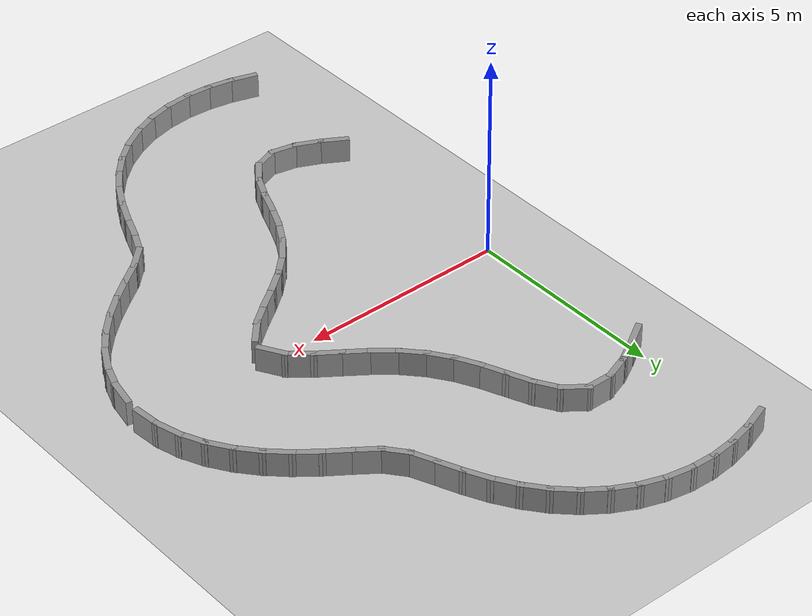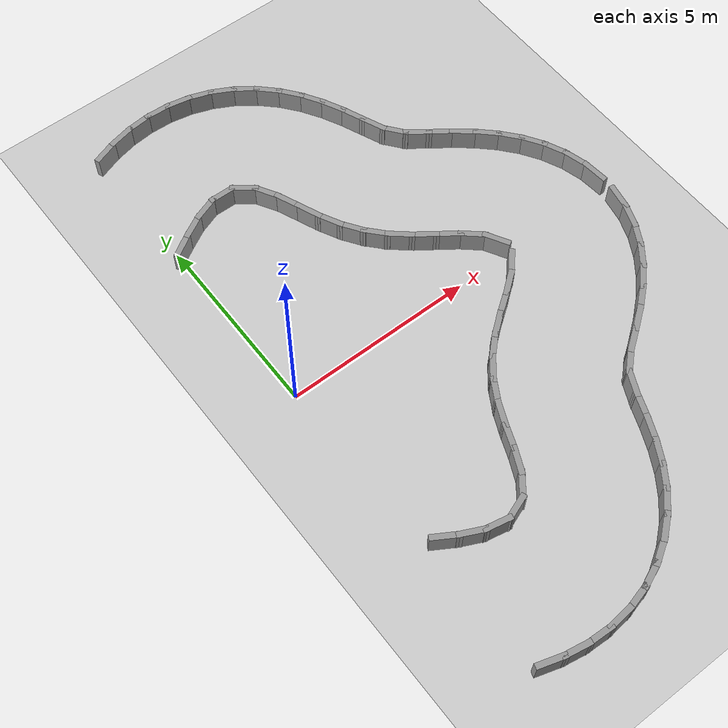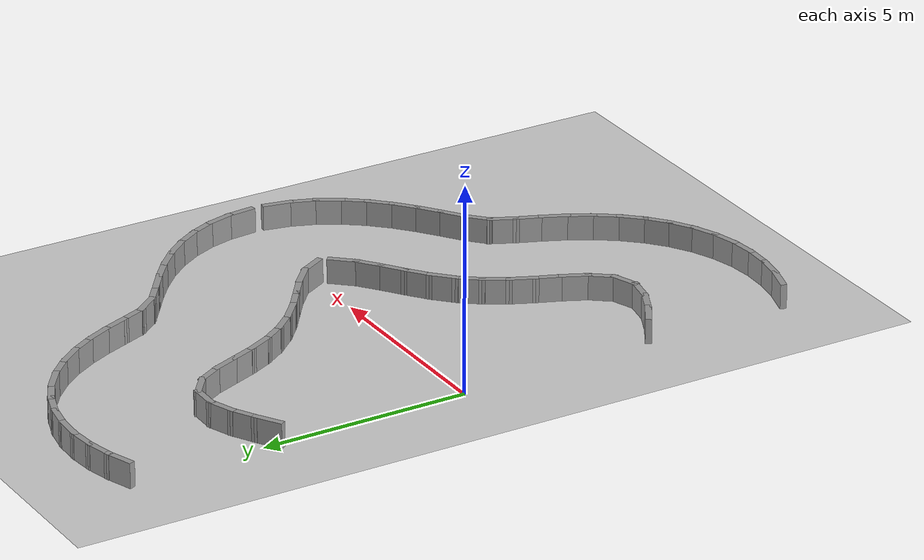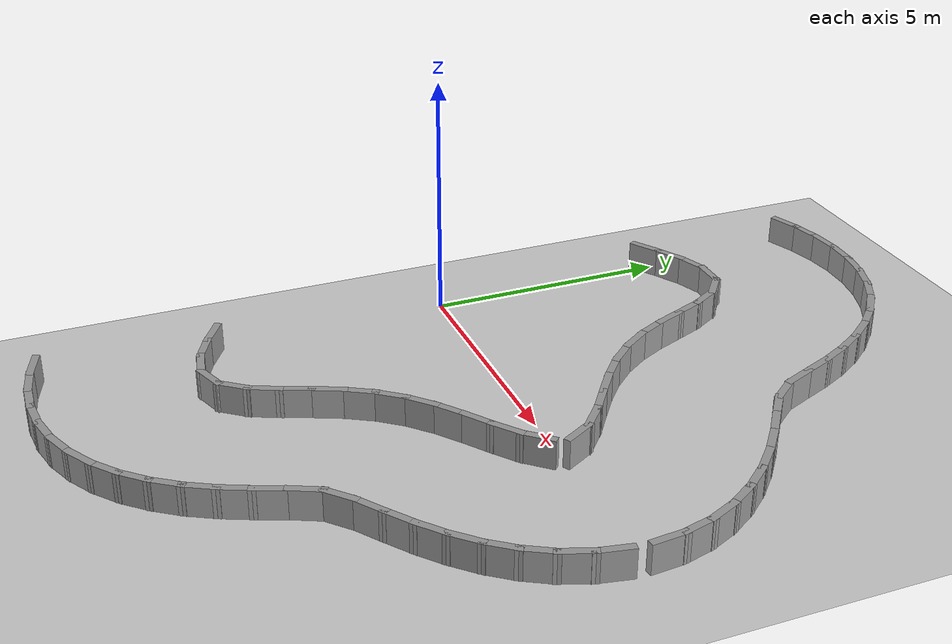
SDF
<sdf version="1.7">
 <world name="default">
  <model name="ground_plane">
   <static>1</static>
   <link name="link">
    <collision name="collision">
     <geometry><plane><normal>0 0 1</normal><size>100 100</size></plane></geometry>
     <surface><friction><ode><mu>100</mu><mu2>50</mu2></ode></friction></surface>
    </collision>
    <visual name="visual">
     <cast_shadows>0</cast_shadows>
     <geometry><plane><normal>0 0 1</normal><size>100 100</size></plane></geometry>
     <material>
      <script><uri>file://media/materials/scripts/gazebo.material</uri><name>Gazebo/Grey</name></script>
     </material>
    </visual>
   </link>
  </model>
  <model name="rand_lobed_06">
   <link name="Wall_0">
    <collision name="Wall_0_Collision">
     <geometry><box><size>0.7384 0.1500 0.6000</size></box></geometry>
     <pose>0 0 0.3000 0 -0 0</pose>
    </collision>
    <visual name="Wall_0_Visual">
     <pose>0 0 0.3000 0 -0 0</pose>
     <geometry><box><size>0.7384 0.1500 0.6000</size></box></geometry>
     <material>
      <script><uri>file://media/materials/scripts/gazebo.material</uri><name>Gazebo/Grey</name></script>
      <ambient>1 1 1 1</ambient>
     </material>
    </visual>
    <pose>6.3126 0.2560 0 0 -0 2.08595</pose>
   </link>
   <link name="Wall_1">
    <collision name="Wall_1_Collision">
     <geometry><box><size>0.7494 0.1500 0.6000</size></box></geometry>
     <pose>0 0 0.3000 0 -0 0</pose>
    </collision>
    <visual name="Wall_1_Visual">
     <pose>0 0 0.3000 0 -0 0</pose>
     <geometry><box><size>0.7494 0.1500 0.6000</size></box></geometry>
     <material>
      <script><uri>file://media/materials/scripts/gazebo.material</uri><name>Gazebo/Grey</name></script>
      <ambient>1 1 1 1</ambient>
     </material>
    </visual>
    <pose>5.9425 0.7098 0 0 -0 2.42072</pose>
   </link>
   <link name="Wall_2">
    <collision name="Wall_2_Collision">
     <geometry><box><size>0.7500 0.1500 0.6000</size></box></geometry>
     <pose>0 0 0.3000 0 -0 0</pose>
    </collision>
    <visual name="Wall_2_Visual">
     <pose>0 0 0.3000 0 -0 0</pose>
     <geometry><box><size>0.7500 0.1500 0.6000</size></box></geometry>
     <material>
      <script><uri>file://media/materials/scripts/gazebo.material</uri><name>Gazebo/Grey</name></script>
      <ambient>1 1 1 1</ambient>
     </material>
    </visual>
    <pose>5.4744 1.0836 0 0 -0 2.51488</pose>
   </link>
   <link name="Wall_3">
    <collision name="Wall_3_Collision">
     <geometry><box><size>0.7499 0.1500 0.6000</size></box></geometry>
     <pose>0 0 0.3000 0 -0 0</pose>
    </collision>
    <visual name="Wall_3_Visual">
     <pose>0 0 0.3000 0 -0 0</pose>
     <geometry><box><size>0.7499 0.1500 0.6000</size></box></geometry>
     <material>
      <script><uri>file://media/materials/scripts/gazebo.material</uri><name>Gazebo/Grey</name></script>
      <ambient>1 1 1 1</ambient>
     </material>
    </visual>
    <pose>4.9893 1.4365 0 0 -0 2.51041</pose>
   </link>
   <link name="Wall_4">
    <collision name="Wall_4_Collision">
     <geometry><box><size>0.7497 0.1500 0.6000</size></box></geometry>
     <pose>0 0 0.3000 0 -0 0</pose>
    </collision>
    <visual name="Wall_4_Visual">
     <pose>0 0 0.3000 0 -0 0</pose>
     <geometry><box><size>0.7497 0.1500 0.6000</size></box></geometry>
     <material>
      <script><uri>file://media/materials/scripts/gazebo.material</uri><name>Gazebo/Grey</name></script>
      <ambient>1 1 1 1</ambient>
     </material>
    </visual>
    <pose>4.5193 1.8085 0 0 -0 2.43352</pose>
   </link>
   <link name="Wall_5">
    <collision name="Wall_5_Collision">
     <geometry><box><size>0.7495 0.1500 0.6000</size></box></geometry>
     <pose>0 0 0.3000 0 -0 0</pose>
    </collision>
    <visual name="Wall_5_Visual">
     <pose>0 0 0.3000 0 -0 0</pose>
     <geometry><box><size>0.7495 0.1500 0.6000</size></box></geometry>
     <material>
      <script><uri>file://media/materials/scripts/gazebo.material</uri><name>Gazebo/Grey</name></script>
      <ambient>1 1 1 1</ambient>
     </material>
    </visual>
    <pose>4.0900 2.2254 0 0 -0 2.30842</pose>
   </link>
   <link name="Wall_6">
    <collision name="Wall_6_Collision">
     <geometry><box><size>0.7495 0.1500 0.6000</size></box></geometry>
     <pose>0 0 0.3000 0 -0 0</pose>
    </collision>
    <visual name="Wall_6_Visual">
     <pose>0 0 0.3000 0 -0 0</pose>
     <geometry><box><size>0.7495 0.1500 0.6000</size></box></geometry>
     <material>
      <script><uri>file://media/materials/scripts/gazebo.material</uri><name>Gazebo/Grey</name></script>
      <ambient>1 1 1 1</ambient>
     </material>
    </visual>
    <pose>3.7205 2.6956 0 0 -0 2.16516</pose>
   </link>
   <link name="Wall_7">
    <collision name="Wall_7_Collision">
     <geometry><box><size>0.7497 0.1500 0.6000</size></box></geometry>
     <pose>0 0 0.3000 0 -0 0</pose>
    </collision>
    <visual name="Wall_7_Visual">
     <pose>0 0 0.3000 0 -0 0</pose>
     <geometry><box><size>0.7497 0.1500 0.6000</size></box></geometry>
     <material>
      <script><uri>file://media/materials/scripts/gazebo.material</uri><name>Gazebo/Grey</name></script>
      <ambient>1 1 1 1</ambient>
     </material>
    </visual>
    <pose>3.4180 3.2118 0 0 -0 2.03660</pose>
   </link>
   <link name="Wall_8">
    <collision name="Wall_8_Collision">
     <geometry><box><size>0.7500 0.1500 0.6000</size></box></geometry>
     <pose>0 0 0.3000 0 -0 0</pose>
    </collision>
    <visual name="Wall_8_Visual">
     <pose>0 0 0.3000 0 -0 0</pose>
     <geometry><box><size>0.7500 0.1500 0.6000</size></box></geometry>
     <material>
      <script><uri>file://media/materials/scripts/gazebo.material</uri><name>Gazebo/Grey</name></script>
      <ambient>1 1 1 1</ambient>
     </material>
    </visual>
    <pose>3.1701 3.7575 0 0 -0 1.95765</pose>
   </link>
   <link name="Wall_9">
    <collision name="Wall_9_Collision">
     <geometry><box><size>0.7499 0.1500 0.6000</size></box></geometry>
     <pose>0 0 0.3000 0 -0 0</pose>
    </collision>
    <visual name="Wall_9_Visual">
     <pose>0 0 0.3000 0 -0 0</pose>
     <geometry><box><size>0.7499 0.1500 0.6000</size></box></geometry>
     <material>
      <script><uri>file://media/materials/scripts/gazebo.material</uri><name>Gazebo/Grey</name></script>
      <ambient>1 1 1 1</ambient>
     </material>
    </visual>
    <pose>2.9421 4.3124 0 0 -0 1.96361</pose>
   </link>
   <link name="Wall_10">
    <collision name="Wall_10_Collision">
     <geometry><box><size>0.7488 0.1500 0.6000</size></box></geometry>
     <pose>0 0 0.3000 0 -0 0</pose>
    </collision>
    <visual name="Wall_10_Visual">
     <pose>0 0 0.3000 0 -0 0</pose>
     <geometry><box><size>0.7488 0.1500 0.6000</size></box></geometry>
     <material>
      <script><uri>file://media/materials/scripts/gazebo.material</uri><name>Gazebo/Grey</name></script>
      <ambient>1 1 1 1</ambient>
     </material>
    </visual>
    <pose>2.6768 4.8483 0 0 -0 2.09764</pose>
   </link>
   <link name="Wall_11">
    <collision name="Wall_11_Collision">
     <geometry><box><size>0.7411 0.1500 0.6000</size></box></geometry>
     <pose>0 0 0.3000 0 -0 0</pose>
    </collision>
    <visual name="Wall_11_Visual">
     <pose>0 0 0.3000 0 -0 0</pose>
     <geometry><box><size>0.7411 0.1500 0.6000</size></box></geometry>
     <material>
      <script><uri>file://media/materials/scripts/gazebo.material</uri><name>Gazebo/Grey</name></script>
      <ambient>1 1 1 1</ambient>
     </material>
    </visual>
    <pose>2.2925 5.2879 0 0 -0 2.48318</pose>
   </link>
   <link name="Wall_12">
    <collision name="Wall_12_Collision">
     <geometry><box><size>0.7426 0.1500 0.6000</size></box></geometry>
     <pose>0 0 0.3000 0 -0 0</pose>
    </collision>
    <visual name="Wall_12_Visual">
     <pose>0 0 0.3000 0 -0 0</pose>
     <geometry><box><size>0.7426 0.1500 0.6000</size></box></geometry>
     <material>
      <script><uri>file://media/materials/scripts/gazebo.material</uri><name>Gazebo/Grey</name></script>
      <ambient>1 1 1 1</ambient>
     </material>
    </visual>
    <pose>1.7624 5.4718 0 0 -0 3.13125</pose>
   </link>
   <link name="Wall_13">
    <collision name="Wall_13_Collision">
     <geometry><box><size>0.7487 0.1500 0.6000</size></box></geometry>
     <pose>0 0 0.3000 0 -0 0</pose>
    </collision>
    <visual name="Wall_13_Visual">
     <pose>0 0 0.3000 0 -0 0</pose>
     <geometry><box><size>0.7487 0.1500 0.6000</size></box></geometry>
     <material>
      <script><uri>file://media/materials/scripts/gazebo.material</uri><name>Gazebo/Grey</name></script>
      <ambient>1 1 1 1</ambient>
     </material>
    </visual>
    <pose>1.1853 5.3713 0 0 -0 -2.78829</pose>
   </link>
   <link name="Wall_14">
    <collision name="Wall_14_Collision">
     <geometry><box><size>0.7498 0.1500 0.6000</size></box></geometry>
     <pose>0 0 0.3000 0 -0 0</pose>
    </collision>
    <visual name="Wall_14_Visual">
     <pose>0 0 0.3000 0 -0 0</pose>
     <geometry><box><size>0.7498 0.1500 0.6000</size></box></geometry>
     <material>
      <script><uri>file://media/materials/scripts/gazebo.material</uri><name>Gazebo/Grey</name></script>
      <ambient>1 1 1 1</ambient>
     </material>
    </visual>
    <pose>0.6426 5.1217 0 0 -0 -2.63271</pose>
   </link>
   <link name="Wall_15">
    <collision name="Wall_15_Collision">
     <geometry><box><size>0.7500 0.1500 0.6000</size></box></geometry>
     <pose>0 0 0.3000 0 -0 0</pose>
    </collision>
    <visual name="Wall_15_Visual">
     <pose>0 0 0.3000 0 -0 0</pose>
     <geometry><box><size>0.7500 0.1500 0.6000</size></box></geometry>
     <material>
      <script><uri>file://media/materials/scripts/gazebo.material</uri><name>Gazebo/Grey</name></script>
      <ambient>1 1 1 1</ambient>
     </material>
    </visual>
    <pose>0.1257 4.8175 0 0 -0 -2.58682</pose>
   </link>
   <link name="Wall_46">
    <collision name="Wall_46_Collision">
     <geometry><box><size>0.7499 0.1500 0.6000</size></box></geometry>
     <pose>0 0 0.3000 0 -0 0</pose>
    </collision>
    <visual name="Wall_46_Visual">
     <pose>0 0 0.3000 0 -0 0</pose>
     <geometry><box><size>0.7499 0.1500 0.6000</size></box></geometry>
     <material>
      <script><uri>file://media/materials/scripts/gazebo.material</uri><name>Gazebo/Grey</name></script>
      <ambient>1 1 1 1</ambient>
     </material>
    </visual>
    <pose>0.3972 -4.9815 0 0 -0 -0.54201</pose>
   </link>
   <link name="Wall_47">
    <collision name="Wall_47_Collision">
     <geometry><box><size>0.7494 0.1500 0.6000</size></box></geometry>
     <pose>0 0 0.3000 0 -0 0</pose>
    </collision>
    <visual name="Wall_47_Visual">
     <pose>0 0 0.3000 0 -0 0</pose>
     <geometry><box><size>0.7494 0.1500 0.6000</size></box></geometry>
     <material>
      <script><uri>file://media/materials/scripts/gazebo.material</uri><name>Gazebo/Grey</name></script>
      <ambient>1 1 1 1</ambient>
     </material>
    </visual>
    <pose>0.9249 -5.2648 0 0 -0 -0.44341</pose>
   </link>
   <link name="Wall_48">
    <collision name="Wall_48_Collision">
     <geometry><box><size>0.7468 0.1500 0.6000</size></box></geometry>
     <pose>0 0 0.3000 0 -0 0</pose>
    </collision>
    <visual name="Wall_48_Visual">
     <pose>0 0 0.3000 0 -0 0</pose>
     <geometry><box><size>0.7468 0.1500 0.6000</size></box></geometry>
     <material>
      <script><uri>file://media/materials/scripts/gazebo.material</uri><name>Gazebo/Grey</name></script>
      <ambient>1 1 1 1</ambient>
     </material>
    </visual>
    <pose>1.4881 -5.4528 0 0 -0 -0.20037</pose>
   </link>
   <link name="Wall_49">
    <collision name="Wall_49_Collision">
     <geometry><box><size>0.7370 0.1500 0.6000</size></box></geometry>
     <pose>0 0 0.3000 0 -0 0</pose>
    </collision>
    <visual name="Wall_49_Visual">
     <pose>0 0 0.3000 0 -0 0</pose>
     <geometry><box><size>0.7370 0.1500 0.6000</size></box></geometry>
     <material>
      <script><uri>file://media/materials/scripts/gazebo.material</uri><name>Gazebo/Grey</name></script>
      <ambient>1 1 1 1</ambient>
     </material>
    </visual>
    <pose>2.0565 -5.4122 0 0 -0 0.34736</pose>
   </link>
   <link name="Wall_50">
    <collision name="Wall_50_Collision">
     <geometry><box><size>0.7468 0.1500 0.6000</size></box></geometry>
     <pose>0 0 0.3000 0 -0 0</pose>
    </collision>
    <visual name="Wall_50_Visual">
     <pose>0 0 0.3000 0 -0 0</pose>
     <geometry><box><size>0.7468 0.1500 0.6000</size></box></geometry>
     <material>
      <script><uri>file://media/materials/scripts/gazebo.material</uri><name>Gazebo/Grey</name></script>
      <ambient>1 1 1 1</ambient>
     </material>
    </visual>
    <pose>2.5160 -5.0770 0 0 -0 0.90844</pose>
   </link>
   <link name="Wall_51">
    <collision name="Wall_51_Collision">
     <geometry><box><size>0.7496 0.1500 0.6000</size></box></geometry>
     <pose>0 0 0.3000 0 -0 0</pose>
    </collision>
    <visual name="Wall_51_Visual">
     <pose>0 0 0.3000 0 -0 0</pose>
     <geometry><box><size>0.7496 0.1500 0.6000</size></box></geometry>
     <material>
      <script><uri>file://media/materials/scripts/gazebo.material</uri><name>Gazebo/Grey</name></script>
      <ambient>1 1 1 1</ambient>
     </material>
    </visual>
    <pose>2.8261 -4.5700 0 0 -0 1.13472</pose>
   </link>
   <link name="Wall_52">
    <collision name="Wall_52_Collision">
     <geometry><box><size>0.7500 0.1500 0.6000</size></box></geometry>
     <pose>0 0 0.3000 0 -0 0</pose>
    </collision>
    <visual name="Wall_52_Visual">
     <pose>0 0 0.3000 0 -0 0</pose>
     <geometry><box><size>0.7500 0.1500 0.6000</size></box></geometry>
     <material>
      <script><uri>file://media/materials/scripts/gazebo.material</uri><name>Gazebo/Grey</name></script>
      <ambient>1 1 1 1</ambient>
     </material>
    </visual>
    <pose>3.0632 -4.0193 0 0 -0 1.19387</pose>
   </link>
   <link name="Wall_53">
    <collision name="Wall_53_Collision">
     <geometry><box><size>0.7498 0.1500 0.6000</size></box></geometry>
     <pose>0 0 0.3000 0 -0 0</pose>
    </collision>
    <visual name="Wall_53_Visual">
     <pose>0 0 0.3000 0 -0 0</pose>
     <geometry><box><size>0.7498 0.1500 0.6000</size></box></geometry>
     <material>
      <script><uri>file://media/materials/scripts/gazebo.material</uri><name>Gazebo/Grey</name></script>
      <ambient>1 1 1 1</ambient>
     </material>
    </visual>
    <pose>3.2959 -3.4665 0 0 -0 1.15057</pose>
   </link>
   <link name="Wall_54">
    <collision name="Wall_54_Collision">
     <geometry><box><size>0.7496 0.1500 0.6000</size></box></geometry>
     <pose>0 0 0.3000 0 -0 0</pose>
    </collision>
    <visual name="Wall_54_Visual">
     <pose>0 0 0.3000 0 -0 0</pose>
     <geometry><box><size>0.7496 0.1500 0.6000</size></box></geometry>
     <material>
      <script><uri>file://media/materials/scripts/gazebo.material</uri><name>Gazebo/Grey</name></script>
      <ambient>1 1 1 1</ambient>
     </material>
    </visual>
    <pose>3.5698 -2.9340 0 0 -0 1.04101</pose>
   </link>
   <link name="Wall_55">
    <collision name="Wall_55_Collision">
     <geometry><box><size>0.7495 0.1500 0.6000</size></box></geometry>
     <pose>0 0 0.3000 0 -0 0</pose>
    </collision>
    <visual name="Wall_55_Visual">
     <pose>0 0 0.3000 0 -0 0</pose>
     <geometry><box><size>0.7495 0.1500 0.6000</size></box></geometry>
     <material>
      <script><uri>file://media/materials/scripts/gazebo.material</uri><name>Gazebo/Grey</name></script>
      <ambient>1 1 1 1</ambient>
     </material>
    </visual>
    <pose>3.9075 -2.4405 0 0 -0 0.90035</pose>
   </link>
   <link name="Wall_56">
    <collision name="Wall_56_Collision">
     <geometry><box><size>0.7496 0.1500 0.6000</size></box></geometry>
     <pose>0 0 0.3000 0 -0 0</pose>
    </collision>
    <visual name="Wall_56_Visual">
     <pose>0 0 0.3000 0 -0 0</pose>
     <geometry><box><size>0.7496 0.1500 0.6000</size></box></geometry>
     <material>
      <script><uri>file://media/materials/scripts/gazebo.material</uri><name>Gazebo/Grey</name></script>
      <ambient>1 1 1 1</ambient>
     </material>
    </visual>
    <pose>4.3105 -1.9985 0 0 -0 0.76277</pose>
   </link>
   <link name="Wall_57">
    <collision name="Wall_57_Collision">
     <geometry><box><size>0.7499 0.1500 0.6000</size></box></geometry>
     <pose>0 0 0.3000 0 -0 0</pose>
    </collision>
    <visual name="Wall_57_Visual">
     <pose>0 0 0.3000 0 -0 0</pose>
     <geometry><box><size>0.7499 0.1500 0.6000</size></box></geometry>
     <material>
      <script><uri>file://media/materials/scripts/gazebo.material</uri><name>Gazebo/Grey</name></script>
      <ambient>1 1 1 1</ambient>
     </material>
    </visual>
    <pose>4.7642 -1.6075 0 0 -0 0.65969</pose>
   </link>
   <link name="Wall_58">
    <collision name="Wall_58_Collision">
     <geometry><box><size>0.7500 0.1500 0.6000</size></box></geometry>
     <pose>0 0 0.3000 0 -0 0</pose>
    </collision>
    <visual name="Wall_58_Visual">
     <pose>0 0 0.3000 0 -0 0</pose>
     <geometry><box><size>0.7500 0.1500 0.6000</size></box></geometry>
     <material>
      <script><uri>file://media/materials/scripts/gazebo.material</uri><name>Gazebo/Grey</name></script>
      <ambient>1 1 1 1</ambient>
     </material>
    </visual>
    <pose>5.2457 -1.2498 0 0 -0 0.61848</pose>
   </link>
   <link name="Wall_59">
    <collision name="Wall_59_Collision">
     <geometry><box><size>0.7498 0.1500 0.6000</size></box></geometry>
     <pose>0 0 0.3000 0 -0 0</pose>
    </collision>
    <visual name="Wall_59_Visual">
     <pose>0 0 0.3000 0 -0 0</pose>
     <geometry><box><size>0.7498 0.1500 0.6000</size></box></geometry>
     <material>
      <script><uri>file://media/materials/scripts/gazebo.material</uri><name>Gazebo/Grey</name></script>
      <ambient>1 1 1 1</ambient>
     </material>
    </visual>
    <pose>5.7267 -0.8916 0 0 -0 0.66139</pose>
   </link>
   <link name="Wall_60">
    <collision name="Wall_60_Collision">
     <geometry><box><size>0.7479 0.1500 0.6000</size></box></geometry>
     <pose>0 0 0.3000 0 -0 0</pose>
    </collision>
    <visual name="Wall_60_Visual">
     <pose>0 0 0.3000 0 -0 0</pose>
     <geometry><box><size>0.7479 0.1500 0.6000</size></box></geometry>
     <material>
      <script><uri>file://media/materials/scripts/gazebo.material</uri><name>Gazebo/Grey</name></script>
      <ambient>1 1 1 1</ambient>
     </material>
    </visual>
    <pose>6.1634 -0.4853 0 0 -0 0.83794</pose>
   </link>
   <link name="Wall_61">
    <collision name="Wall_61_Collision">
     <geometry><box><size>0.7492 0.1500 0.6000</size></box></geometry>
     <pose>0 0 0.3000 0 -0 0</pose>
    </collision>
    <visual name="Wall_61_Visual">
     <pose>0 0 0.3000 0 -0 0</pose>
     <geometry><box><size>0.7492 0.1500 0.6000</size></box></geometry>
     <material>
      <script><uri>file://media/materials/scripts/gazebo.material</uri><name>Gazebo/Grey</name></script>
      <ambient>1 1 1 1</ambient>
     </material>
    </visual>
    <pose>9.5967 0.2985 0 0 -0 1.65788</pose>
   </link>
   <link name="Wall_62">
    <collision name="Wall_62_Collision">
     <geometry><box><size>0.7493 0.1500 0.6000</size></box></geometry>
     <pose>0 0 0.3000 0 -0 0</pose>
    </collision>
    <visual name="Wall_62_Visual">
     <pose>0 0 0.3000 0 -0 0</pose>
     <geometry><box><size>0.7493 0.1500 0.6000</size></box></geometry>
     <material>
      <script><uri>file://media/materials/scripts/gazebo.material</uri><name>Gazebo/Grey</name></script>
      <ambient>1 1 1 1</ambient>
     </material>
    </visual>
    <pose>9.4942 0.8867 0 0 -0 1.82860</pose>
   </link>
   <link name="Wall_63">
    <collision name="Wall_63_Collision">
     <geometry><box><size>0.7494 0.1500 0.6000</size></box></geometry>
     <pose>0 0 0.3000 0 -0 0</pose>
    </collision>
    <visual name="Wall_63_Visual">
     <pose>0 0 0.3000 0 -0 0</pose>
     <geometry><box><size>0.7494 0.1500 0.6000</size></box></geometry>
     <material>
      <script><uri>file://media/materials/scripts/gazebo.material</uri><name>Gazebo/Grey</name></script>
      <ambient>1 1 1 1</ambient>
     </material>
    </visual>
    <pose>9.2957 1.4501 0 0 -0 1.99055</pose>
   </link>
   <link name="Wall_64">
    <collision name="Wall_64_Collision">
     <geometry><box><size>0.7495 0.1500 0.6000</size></box></geometry>
     <pose>0 0 0.3000 0 -0 0</pose>
    </collision>
    <visual name="Wall_64_Visual">
     <pose>0 0 0.3000 0 -0 0</pose>
     <geometry><box><size>0.7495 0.1500 0.6000</size></box></geometry>
     <material>
      <script><uri>file://media/materials/scripts/gazebo.material</uri><name>Gazebo/Grey</name></script>
      <ambient>1 1 1 1</ambient>
     </material>
    </visual>
    <pose>9.0124 1.9766 0 0 -0 2.13853</pose>
   </link>
   <link name="Wall_65">
    <collision name="Wall_65_Collision">
     <geometry><box><size>0.7496 0.1500 0.6000</size></box></geometry>
     <pose>0 0 0.3000 0 -0 0</pose>
    </collision>
    <visual name="Wall_65_Visual">
     <pose>0 0 0.3000 0 -0 0</pose>
     <geometry><box><size>0.7496 0.1500 0.6000</size></box></geometry>
     <material>
      <script><uri>file://media/materials/scripts/gazebo.material</uri><name>Gazebo/Grey</name></script>
      <ambient>1 1 1 1</ambient>
     </material>
    </visual>
    <pose>8.6584 2.4589 0 0 -0 2.26909</pose>
   </link>
   <link name="Wall_66">
    <collision name="Wall_66_Collision">
     <geometry><box><size>0.7498 0.1500 0.6000</size></box></geometry>
     <pose>0 0 0.3000 0 -0 0</pose>
    </collision>
    <visual name="Wall_66_Visual">
     <pose>0 0 0.3000 0 -0 0</pose>
     <geometry><box><size>0.7498 0.1500 0.6000</size></box></geometry>
     <material>
      <script><uri>file://media/materials/scripts/gazebo.material</uri><name>Gazebo/Grey</name></script>
      <ambient>1 1 1 1</ambient>
     </material>
    </visual>
    <pose>8.2489 2.8958 0 0 -0 2.37871</pose>
   </link>
   <link name="Wall_67">
    <collision name="Wall_67_Collision">
     <geometry><box><size>0.7499 0.1500 0.6000</size></box></geometry>
     <pose>0 0 0.3000 0 -0 0</pose>
    </collision>
    <visual name="Wall_67_Visual">
     <pose>0 0 0.3000 0 -0 0</pose>
     <geometry><box><size>0.7499 0.1500 0.6000</size></box></geometry>
     <material>
      <script><uri>file://media/materials/scripts/gazebo.material</uri><name>Gazebo/Grey</name></script>
      <ambient>1 1 1 1</ambient>
     </material>
    </visual>
    <pose>7.7984 3.2910 0 0 -0 2.46405</pose>
   </link>
   <link name="Wall_68">
    <collision name="Wall_68_Collision">
     <geometry><box><size>0.7500 0.1500 0.6000</size></box></geometry>
     <pose>0 0 0.3000 0 -0 0</pose>
    </collision>
    <visual name="Wall_68_Visual">
     <pose>0 0 0.3000 0 -0 0</pose>
     <geometry><box><size>0.7500 0.1500 0.6000</size></box></geometry>
     <material>
      <script><uri>file://media/materials/scripts/gazebo.material</uri><name>Gazebo/Grey</name></script>
      <ambient>1 1 1 1</ambient>
     </material>
    </visual>
    <pose>7.3215 3.6546 0 0 -0 2.51645</pose>
   </link>
   <link name="Wall_69">
    <collision name="Wall_69_Collision">
     <geometry><box><size>0.7499 0.1500 0.6000</size></box></geometry>
     <pose>0 0 0.3000 0 -0 0</pose>
    </collision>
    <visual name="Wall_69_Visual">
     <pose>0 0 0.3000 0 -0 0</pose>
     <geometry><box><size>0.7499 0.1500 0.6000</size></box></geometry>
     <material>
      <script><uri>file://media/materials/scripts/gazebo.material</uri><name>Gazebo/Grey</name></script>
      <ambient>1 1 1 1</ambient>
     </material>
    </visual>
    <pose>6.8372 4.0087 0 0 -0 2.50422</pose>
   </link>
   <link name="Wall_70">
    <collision name="Wall_70_Collision">
     <geometry><box><size>0.7440 0.1500 0.6000</size></box></geometry>
     <pose>0 0 0.3000 0 -0 0</pose>
    </collision>
    <visual name="Wall_70_Visual">
     <pose>0 0 0.3000 0 -0 0</pose>
     <geometry><box><size>0.7440 0.1500 0.6000</size></box></geometry>
     <material>
      <script><uri>file://media/materials/scripts/gazebo.material</uri><name>Gazebo/Grey</name></script>
      <ambient>1 1 1 1</ambient>
     </material>
    </visual>
    <pose>6.4117 4.4199 0 0 -0 2.24082</pose>
   </link>
   <link name="Wall_71">
    <collision name="Wall_71_Collision">
     <geometry><box><size>0.7499 0.1500 0.6000</size></box></geometry>
     <pose>0 0 0.3000 0 -0 0</pose>
    </collision>
    <visual name="Wall_71_Visual">
     <pose>0 0 0.3000 0 -0 0</pose>
     <geometry><box><size>0.7499 0.1500 0.6000</size></box></geometry>
     <material>
      <script><uri>file://media/materials/scripts/gazebo.material</uri><name>Gazebo/Grey</name></script>
      <ambient>1 1 1 1</ambient>
     </material>
    </visual>
    <pose>6.1123 4.9298 0 0 -0 1.96399</pose>
   </link>
   <link name="Wall_72">
    <collision name="Wall_72_Collision">
     <geometry><box><size>0.7500 0.1500 0.6000</size></box></geometry>
     <pose>0 0 0.3000 0 -0 0</pose>
    </collision>
    <visual name="Wall_72_Visual">
     <pose>0 0 0.3000 0 -0 0</pose>
     <geometry><box><size>0.7500 0.1500 0.6000</size></box></geometry>
     <material>
      <script><uri>file://media/materials/scripts/gazebo.material</uri><name>Gazebo/Grey</name></script>
      <ambient>1 1 1 1</ambient>
     </material>
    </visual>
    <pose>5.8839 5.4845 0 0 -0 1.95895</pose>
   </link>
   <link name="Wall_73">
    <collision name="Wall_73_Collision">
     <geometry><box><size>0.7498 0.1500 0.6000</size></box></geometry>
     <pose>0 0 0.3000 0 -0 0</pose>
    </collision>
    <visual name="Wall_73_Visual">
     <pose>0 0 0.3000 0 -0 0</pose>
     <geometry><box><size>0.7498 0.1500 0.6000</size></box></geometry>
     <material>
      <script><uri>file://media/materials/scripts/gazebo.material</uri><name>Gazebo/Grey</name></script>
      <ambient>1 1 1 1</ambient>
     </material>
    </visual>
    <pose>5.6395 6.0320 0 0 -0 2.02232</pose>
   </link>
   <link name="Wall_74">
    <collision name="Wall_74_Collision">
     <geometry><box><size>0.7497 0.1500 0.6000</size></box></geometry>
     <pose>0 0 0.3000 0 -0 0</pose>
    </collision>
    <visual name="Wall_74_Visual">
     <pose>0 0 0.3000 0 -0 0</pose>
     <geometry><box><size>0.7497 0.1500 0.6000</size></box></geometry>
     <material>
      <script><uri>file://media/materials/scripts/gazebo.material</uri><name>Gazebo/Grey</name></script>
      <ambient>1 1 1 1</ambient>
     </material>
    </visual>
    <pose>5.3528 6.5581 0 0 -0 2.11734</pose>
   </link>
   <link name="Wall_75">
    <collision name="Wall_75_Collision">
     <geometry><box><size>0.7496 0.1500 0.6000</size></box></geometry>
     <pose>0 0 0.3000 0 -0 0</pose>
    </collision>
    <visual name="Wall_75_Visual">
     <pose>0 0 0.3000 0 -0 0</pose>
     <geometry><box><size>0.7496 0.1500 0.6000</size></box></geometry>
     <material>
      <script><uri>file://media/materials/scripts/gazebo.material</uri><name>Gazebo/Grey</name></script>
      <ambient>1 1 1 1</ambient>
     </material>
    </visual>
    <pose>5.0126 7.0507 0 0 -0 2.23292</pose>
   </link>
   <link name="Wall_76">
    <collision name="Wall_76_Collision">
     <geometry><box><size>0.7495 0.1500 0.6000</size></box></geometry>
     <pose>0 0 0.3000 0 -0 0</pose>
    </collision>
    <visual name="Wall_76_Visual">
     <pose>0 0 0.3000 0 -0 0</pose>
     <geometry><box><size>0.7495 0.1500 0.6000</size></box></geometry>
     <material>
      <script><uri>file://media/materials/scripts/gazebo.material</uri><name>Gazebo/Grey</name></script>
      <ambient>1 1 1 1</ambient>
     </material>
    </visual>
    <pose>4.6148 7.4975 0 0 -0 2.36365</pose>
   </link>
   <link name="Wall_77">
    <collision name="Wall_77_Collision">
     <geometry><box><size>0.7495 0.1500 0.6000</size></box></geometry>
     <pose>0 0 0.3000 0 -0 0</pose>
    </collision>
    <visual name="Wall_77_Visual">
     <pose>0 0 0.3000 0 -0 0</pose>
     <geometry><box><size>0.7495 0.1500 0.6000</size></box></geometry>
     <material>
      <script><uri>file://media/materials/scripts/gazebo.material</uri><name>Gazebo/Grey</name></script>
      <ambient>1 1 1 1</ambient>
     </material>
    </visual>
    <pose>4.1601 7.8860 0 0 -0 2.50535</pose>
   </link>
   <link name="Wall_78">
    <collision name="Wall_78_Collision">
     <geometry><box><size>0.7494 0.1500 0.6000</size></box></geometry>
     <pose>0 0 0.3000 0 -0 0</pose>
    </collision>
    <visual name="Wall_78_Visual">
     <pose>0 0 0.3000 0 -0 0</pose>
     <geometry><box><size>0.7494 0.1500 0.6000</size></box></geometry>
     <material>
      <script><uri>file://media/materials/scripts/gazebo.material</uri><name>Gazebo/Grey</name></script>
      <ambient>1 1 1 1</ambient>
     </material>
    </visual>
    <pose>3.6542 8.2044 0 0 -0 2.65415</pose>
   </link>
   <link name="Wall_79">
    <collision name="Wall_79_Collision">
     <geometry><box><size>0.7494 0.1500 0.6000</size></box></geometry>
     <pose>0 0 0.3000 0 -0 0</pose>
    </collision>
    <visual name="Wall_79_Visual">
     <pose>0 0 0.3000 0 -0 0</pose>
     <geometry><box><size>0.7494 0.1500 0.6000</size></box></geometry>
     <material>
      <script><uri>file://media/materials/scripts/gazebo.material</uri><name>Gazebo/Grey</name></script>
      <ambient>1 1 1 1</ambient>
     </material>
    </visual>
    <pose>3.1064 8.4435 0 0 -0 2.80609</pose>
   </link>
   <link name="Wall_80">
    <collision name="Wall_80_Collision">
     <geometry><box><size>0.7494 0.1500 0.6000</size></box></geometry>
     <pose>0 0 0.3000 0 -0 0</pose>
    </collision>
    <visual name="Wall_80_Visual">
     <pose>0 0 0.3000 0 -0 0</pose>
     <geometry><box><size>0.7494 0.1500 0.6000</size></box></geometry>
     <material>
      <script><uri>file://media/materials/scripts/gazebo.material</uri><name>Gazebo/Grey</name></script>
      <ambient>1 1 1 1</ambient>
     </material>
    </visual>
    <pose>2.5288 8.5972 0 0 -0 2.95709</pose>
   </link>
   <link name="Wall_81">
    <collision name="Wall_81_Collision">
     <geometry><box><size>0.7495 0.1500 0.6000</size></box></geometry>
     <pose>0 0 0.3000 0 -0 0</pose>
    </collision>
    <visual name="Wall_81_Visual">
     <pose>0 0 0.3000 0 -0 0</pose>
     <geometry><box><size>0.7495 0.1500 0.6000</size></box></geometry>
     <material>
      <script><uri>file://media/materials/scripts/gazebo.material</uri><name>Gazebo/Grey</name></script>
      <ambient>1 1 1 1</ambient>
     </material>
    </visual>
    <pose>1.9346 8.6636 0 0 -0 3.10343</pose>
   </link>
   <link name="Wall_82">
    <collision name="Wall_82_Collision">
     <geometry><box><size>0.7496 0.1500 0.6000</size></box></geometry>
     <pose>0 0 0.3000 0 -0 0</pose>
    </collision>
    <visual name="Wall_82_Visual">
     <pose>0 0 0.3000 0 -0 0</pose>
     <geometry><box><size>0.7496 0.1500 0.6000</size></box></geometry>
     <material>
      <script><uri>file://media/materials/scripts/gazebo.material</uri><name>Gazebo/Grey</name></script>
      <ambient>1 1 1 1</ambient>
     </material>
    </visual>
    <pose>1.3368 8.6452 0 0 -0 -3.04182</pose>
   </link>
   <link name="Wall_83">
    <collision name="Wall_83_Collision">
     <geometry><box><size>0.7496 0.1500 0.6000</size></box></geometry>
     <pose>0 0 0.3000 0 -0 0</pose>
    </collision>
    <visual name="Wall_83_Visual">
     <pose>0 0 0.3000 0 -0 0</pose>
     <geometry><box><size>0.7496 0.1500 0.6000</size></box></geometry>
     <material>
      <script><uri>file://media/materials/scripts/gazebo.material</uri><name>Gazebo/Grey</name></script>
      <ambient>1 1 1 1</ambient>
     </material>
    </visual>
    <pose>0.7464 8.5479 0 0 -0 -2.91470</pose>
   </link>
   <link name="Wall_84">
    <collision name="Wall_84_Collision">
     <geometry><box><size>0.7497 0.1500 0.6000</size></box></geometry>
     <pose>0 0 0.3000 0 -0 0</pose>
    </collision>
    <visual name="Wall_84_Visual">
     <pose>0 0 0.3000 0 -0 0</pose>
     <geometry><box><size>0.7497 0.1500 0.6000</size></box></geometry>
     <material>
      <script><uri>file://media/materials/scripts/gazebo.material</uri><name>Gazebo/Grey</name></script>
      <ambient>1 1 1 1</ambient>
     </material>
    </visual>
    <pose>0.1716 8.3803 0 0 -0 -2.80128</pose>
   </link>
   <link name="Wall_132">
    <collision name="Wall_132_Collision">
     <geometry><box><size>0.7497 0.1500 0.6000</size></box></geometry>
     <pose>0 0 0.3000 0 -0 0</pose>
    </collision>
    <visual name="Wall_132_Visual">
     <pose>0 0 0.3000 0 -0 0</pose>
     <geometry><box><size>0.7497 0.1500 0.6000</size></box></geometry>
     <material>
      <script><uri>file://media/materials/scripts/gazebo.material</uri><name>Gazebo/Grey</name></script>
      <ambient>1 1 1 1</ambient>
     </material>
    </visual>
    <pose>0.3897 -8.4522 0 0 -0 -0.29857</pose>
   </link>
   <link name="Wall_133">
    <collision name="Wall_133_Collision">
     <geometry><box><size>0.7496 0.1500 0.6000</size></box></geometry>
     <pose>0 0 0.3000 0 -0 0</pose>
    </collision>
    <visual name="Wall_133_Visual">
     <pose>0 0 0.3000 0 -0 0</pose>
     <geometry><box><size>0.7496 0.1500 0.6000</size></box></geometry>
     <material>
      <script><uri>file://media/materials/scripts/gazebo.material</uri><name>Gazebo/Grey</name></script>
      <ambient>1 1 1 1</ambient>
     </material>
    </visual>
    <pose>0.9713 -8.5940 0 0 -0 -0.17967</pose>
   </link>
   <link name="Wall_134">
    <collision name="Wall_134_Collision">
     <geometry><box><size>0.7495 0.1500 0.6000</size></box></geometry>
     <pose>0 0 0.3000 0 -0 0</pose>
    </collision>
    <visual name="Wall_134_Visual">
     <pose>0 0 0.3000 0 -0 0</pose>
     <geometry><box><size>0.7495 0.1500 0.6000</size></box></geometry>
     <material>
      <script><uri>file://media/materials/scripts/gazebo.material</uri><name>Gazebo/Grey</name></script>
      <ambient>1 1 1 1</ambient>
     </material>
    </visual>
    <pose>1.5656 -8.6619 0 0 -0 -0.04801</pose>
   </link>
   <link name="Wall_135">
    <collision name="Wall_135_Collision">
     <geometry><box><size>0.7495 0.1500 0.6000</size></box></geometry>
     <pose>0 0 0.3000 0 -0 0</pose>
    </collision>
    <visual name="Wall_135_Visual">
     <pose>0 0 0.3000 0 -0 0</pose>
     <geometry><box><size>0.7495 0.1500 0.6000</size></box></geometry>
     <material>
      <script><uri>file://media/materials/scripts/gazebo.material</uri><name>Gazebo/Grey</name></script>
      <ambient>1 1 1 1</ambient>
     </material>
    </visual>
    <pose>2.1635 -8.6483 0 0 -0 0.09348</pose>
   </link>
   <link name="Wall_136">
    <collision name="Wall_136_Collision">
     <geometry><box><size>0.7494 0.1500 0.6000</size></box></geometry>
     <pose>0 0 0.3000 0 -0 0</pose>
    </collision>
    <visual name="Wall_136_Visual">
     <pose>0 0 0.3000 0 -0 0</pose>
     <geometry><box><size>0.7494 0.1500 0.6000</size></box></geometry>
     <material>
      <script><uri>file://media/materials/scripts/gazebo.material</uri><name>Gazebo/Grey</name></script>
      <ambient>1 1 1 1</ambient>
     </material>
    </visual>
    <pose>2.7529 -8.5485 0 0 -0 0.24197</pose>
   </link>
   <link name="Wall_137">
    <collision name="Wall_137_Collision">
     <geometry><box><size>0.7494 0.1500 0.6000</size></box></geometry>
     <pose>0 0 0.3000 0 -0 0</pose>
    </collision>
    <visual name="Wall_137_Visual">
     <pose>0 0 0.3000 0 -0 0</pose>
     <geometry><box><size>0.7494 0.1500 0.6000</size></box></geometry>
     <material>
      <script><uri>file://media/materials/scripts/gazebo.material</uri><name>Gazebo/Grey</name></script>
      <ambient>1 1 1 1</ambient>
     </material>
    </visual>
    <pose>3.3206 -8.3617 0 0 -0 0.39376</pose>
   </link>
   <link name="Wall_138">
    <collision name="Wall_138_Collision">
     <geometry><box><size>0.7494 0.1500 0.6000</size></box></geometry>
     <pose>0 0 0.3000 0 -0 0</pose>
    </collision>
    <visual name="Wall_138_Visual">
     <pose>0 0 0.3000 0 -0 0</pose>
     <geometry><box><size>0.7494 0.1500 0.6000</size></box></geometry>
     <material>
      <script><uri>file://media/materials/scripts/gazebo.material</uri><name>Gazebo/Grey</name></script>
      <ambient>1 1 1 1</ambient>
     </material>
    </visual>
    <pose>3.8537 -8.0914 0 0 -0 0.54511</pose>
   </link>
   <link name="Wall_139">
    <collision name="Wall_139_Collision">
     <geometry><box><size>0.7495 0.1500 0.6000</size></box></geometry>
     <pose>0 0 0.3000 0 -0 0</pose>
    </collision>
    <visual name="Wall_139_Visual">
     <pose>0 0 0.3000 0 -0 0</pose>
     <geometry><box><size>0.7495 0.1500 0.6000</size></box></geometry>
     <material>
      <script><uri>file://media/materials/scripts/gazebo.material</uri><name>Gazebo/Grey</name></script>
      <ambient>1 1 1 1</ambient>
     </material>
    </visual>
    <pose>4.3409 -7.7448 0 0 -0 0.69163</pose>
   </link>
   <link name="Wall_140">
    <collision name="Wall_140_Collision">
     <geometry><box><size>0.7496 0.1500 0.6000</size></box></geometry>
     <pose>0 0 0.3000 0 -0 0</pose>
    </collision>
    <visual name="Wall_140_Visual">
     <pose>0 0 0.3000 0 -0 0</pose>
     <geometry><box><size>0.7496 0.1500 0.6000</size></box></geometry>
     <material>
      <script><uri>file://media/materials/scripts/gazebo.material</uri><name>Gazebo/Grey</name></script>
      <ambient>1 1 1 1</ambient>
     </material>
    </visual>
    <pose>4.7741 -7.3325 0 0 -0 0.82958</pose>
   </link>
   <link name="Wall_141">
    <collision name="Wall_141_Collision">
     <geometry><box><size>0.7496 0.1500 0.6000</size></box></geometry>
     <pose>0 0 0.3000 0 -0 0</pose>
    </collision>
    <visual name="Wall_141_Visual">
     <pose>0 0 0.3000 0 -0 0</pose>
     <geometry><box><size>0.7496 0.1500 0.6000</size></box></geometry>
     <material>
      <script><uri>file://media/materials/scripts/gazebo.material</uri><name>Gazebo/Grey</name></script>
      <ambient>1 1 1 1</ambient>
     </material>
    </visual>
    <pose>5.1497 -6.8666 0 0 -0 0.95498</pose>
   </link>
   <link name="Wall_142">
    <collision name="Wall_142_Collision">
     <geometry><box><size>0.7498 0.1500 0.6000</size></box></geometry>
     <pose>0 0 0.3000 0 -0 0</pose>
    </collision>
    <visual name="Wall_142_Visual">
     <pose>0 0 0.3000 0 -0 0</pose>
     <geometry><box><size>0.7498 0.1500 0.6000</size></box></geometry>
     <material>
      <script><uri>file://media/materials/scripts/gazebo.material</uri><name>Gazebo/Grey</name></script>
      <ambient>1 1 1 1</ambient>
     </material>
    </visual>
    <pose>5.4686 -6.3597 0 0 -0 1.06353</pose>
   </link>
   <link name="Wall_143">
    <collision name="Wall_143_Collision">
     <geometry><box><size>0.7499 0.1500 0.6000</size></box></geometry>
     <pose>0 0 0.3000 0 -0 0</pose>
    </collision>
    <visual name="Wall_143_Visual">
     <pose>0 0 0.3000 0 -0 0</pose>
     <geometry><box><size>0.7499 0.1500 0.6000</size></box></geometry>
     <material>
      <script><uri>file://media/materials/scripts/gazebo.material</uri><name>Gazebo/Grey</name></script>
      <ambient>1 1 1 1</ambient>
     </material>
    </visual>
    <pose>5.7372 -5.8240 0 0 -0 1.14827</pose>
   </link>
   <link name="Wall_144">
    <collision name="Wall_144_Collision">
     <geometry><box><size>0.7500 0.1500 0.6000</size></box></geometry>
     <pose>0 0 0.3000 0 -0 0</pose>
    </collision>
    <visual name="Wall_144_Visual">
     <pose>0 0 0.3000 0 -0 0</pose>
     <geometry><box><size>0.7500 0.1500 0.6000</size></box></geometry>
     <material>
      <script><uri>file://media/materials/scripts/gazebo.material</uri><name>Gazebo/Grey</name></script>
      <ambient>1 1 1 1</ambient>
     </material>
    </visual>
    <pose>5.9709 -5.2716 0 0 -0 1.19309</pose>
   </link>
   <link name="Wall_145">
    <collision name="Wall_145_Collision">
     <geometry><box><size>0.7488 0.1500 0.6000</size></box></geometry>
     <pose>0 0 0.3000 0 -0 0</pose>
    </collision>
    <visual name="Wall_145_Visual">
     <pose>0 0 0.3000 0 -0 0</pose>
     <geometry><box><size>0.7488 0.1500 0.6000</size></box></geometry>
     <material>
      <script><uri>file://media/materials/scripts/gazebo.material</uri><name>Gazebo/Grey</name></script>
      <ambient>1 1 1 1</ambient>
     </material>
    </visual>
    <pose>6.2109 -4.7228 0 0 -0 1.12390</pose>
   </link>
   <link name="Wall_146">
    <collision name="Wall_146_Collision">
     <geometry><box><size>0.7473 0.1500 0.6000</size></box></geometry>
     <pose>0 0 0.3000 0 -0 0</pose>
    </collision>
    <visual name="Wall_146_Visual">
     <pose>0 0 0.3000 0 -0 0</pose>
     <geometry><box><size>0.7473 0.1500 0.6000</size></box></geometry>
     <material>
      <script><uri>file://media/materials/scripts/gazebo.material</uri><name>Gazebo/Grey</name></script>
      <ambient>1 1 1 1</ambient>
     </material>
    </visual>
    <pose>6.5590 -4.2493 0 0 -0 0.74927</pose>
   </link>
   <link name="Wall_147">
    <collision name="Wall_147_Collision">
     <geometry><box><size>0.7500 0.1500 0.6000</size></box></geometry>
     <pose>0 0 0.3000 0 -0 0</pose>
    </collision>
    <visual name="Wall_147_Visual">
     <pose>0 0 0.3000 0 -0 0</pose>
     <geometry><box><size>0.7500 0.1500 0.6000</size></box></geometry>
     <material>
      <script><uri>file://media/materials/scripts/gazebo.material</uri><name>Gazebo/Grey</name></script>
      <ambient>1 1 1 1</ambient>
     </material>
    </visual>
    <pose>7.0218 -3.8716 0 0 -0 0.62018</pose>
   </link>
   <link name="Wall_148">
    <collision name="Wall_148_Collision">
     <geometry><box><size>0.7499 0.1500 0.6000</size></box></geometry>
     <pose>0 0 0.3000 0 -0 0</pose>
    </collision>
    <visual name="Wall_148_Visual">
     <pose>0 0 0.3000 0 -0 0</pose>
     <geometry><box><size>0.7499 0.1500 0.6000</size></box></geometry>
     <material>
      <script><uri>file://media/materials/scripts/gazebo.material</uri><name>Gazebo/Grey</name></script>
      <ambient>1 1 1 1</ambient>
     </material>
    </visual>
    <pose>7.5065 -3.5180 0 0 -0 0.64028</pose>
   </link>
   <link name="Wall_149">
    <collision name="Wall_149_Collision">
     <geometry><box><size>0.7498 0.1500 0.6000</size></box></geometry>
     <pose>0 0 0.3000 0 -0 0</pose>
    </collision>
    <visual name="Wall_149_Visual">
     <pose>0 0 0.3000 0 -0 0</pose>
     <geometry><box><size>0.7498 0.1500 0.6000</size></box></geometry>
     <material>
      <script><uri>file://media/materials/scripts/gazebo.material</uri><name>Gazebo/Grey</name></script>
      <ambient>1 1 1 1</ambient>
     </material>
    </visual>
    <pose>7.9750 -3.1440 0 0 -0 0.70700</pose>
   </link>
   <link name="Wall_150">
    <collision name="Wall_150_Collision">
     <geometry><box><size>0.7497 0.1500 0.6000</size></box></geometry>
     <pose>0 0 0.3000 0 -0 0</pose>
    </collision>
    <visual name="Wall_150_Visual">
     <pose>0 0 0.3000 0 -0 0</pose>
     <geometry><box><size>0.7497 0.1500 0.6000</size></box></geometry>
     <material>
      <script><uri>file://media/materials/scripts/gazebo.material</uri><name>Gazebo/Grey</name></script>
      <ambient>1 1 1 1</ambient>
     </material>
    </visual>
    <pose>8.4115 -2.7336 0 0 -0 0.80226</pose>
   </link>
   <link name="Wall_151">
    <collision name="Wall_151_Collision">
     <geometry><box><size>0.7496 0.1500 0.6000</size></box></geometry>
     <pose>0 0 0.3000 0 -0 0</pose>
    </collision>
    <visual name="Wall_151_Visual">
     <pose>0 0 0.3000 0 -0 0</pose>
     <geometry><box><size>0.7496 0.1500 0.6000</size></box></geometry>
     <material>
      <script><uri>file://media/materials/scripts/gazebo.material</uri><name>Gazebo/Grey</name></script>
      <ambient>1 1 1 1</ambient>
     </material>
    </visual>
    <pose>8.8015 -2.2795 0 0 -0 0.92034</pose>
   </link>
   <link name="Wall_152">
    <collision name="Wall_152_Collision">
     <geometry><box><size>0.7495 0.1500 0.6000</size></box></geometry>
     <pose>0 0 0.3000 0 -0 0</pose>
    </collision>
    <visual name="Wall_152_Visual">
     <pose>0 0 0.3000 0 -0 0</pose>
     <geometry><box><size>0.7495 0.1500 0.6000</size></box></geometry>
     <material>
      <script><uri>file://media/materials/scripts/gazebo.material</uri><name>Gazebo/Grey</name></script>
      <ambient>1 1 1 1</ambient>
     </material>
    </visual>
    <pose>9.1301 -1.7797 0 0 -0 1.05783</pose>
   </link>
   <link name="Wall_153">
    <collision name="Wall_153_Collision">
     <geometry><box><size>0.7494 0.1500 0.6000</size></box></geometry>
     <pose>0 0 0.3000 0 -0 0</pose>
    </collision>
    <visual name="Wall_153_Visual">
     <pose>0 0 0.3000 0 -0 0</pose>
     <geometry><box><size>0.7494 0.1500 0.6000</size></box></geometry>
     <material>
      <script><uri>file://media/materials/scripts/gazebo.material</uri><name>Gazebo/Grey</name></script>
      <ambient>1 1 1 1</ambient>
     </material>
    </visual>
    <pose>9.3825 -1.2380 0 0 -0 1.21163</pose>
   </link>
   <link name="Wall_154">
    <collision name="Wall_154_Collision">
     <geometry><box><size>0.7493 0.1500 0.6000</size></box></geometry>
     <pose>0 0 0.3000 0 -0 0</pose>
    </collision>
    <visual name="Wall_154_Visual">
     <pose>0 0 0.3000 0 -0 0</pose>
     <geometry><box><size>0.7493 0.1500 0.6000</size></box></geometry>
     <material>
      <script><uri>file://media/materials/scripts/gazebo.material</uri><name>Gazebo/Grey</name></script>
      <ambient>1 1 1 1</ambient>
     </material>
    </visual>
    <pose>9.5453 -0.6634 0 0 -0 1.37776</pose>
   </link>
   <static>1</static>
  </model>
 </world>
</sdf>
